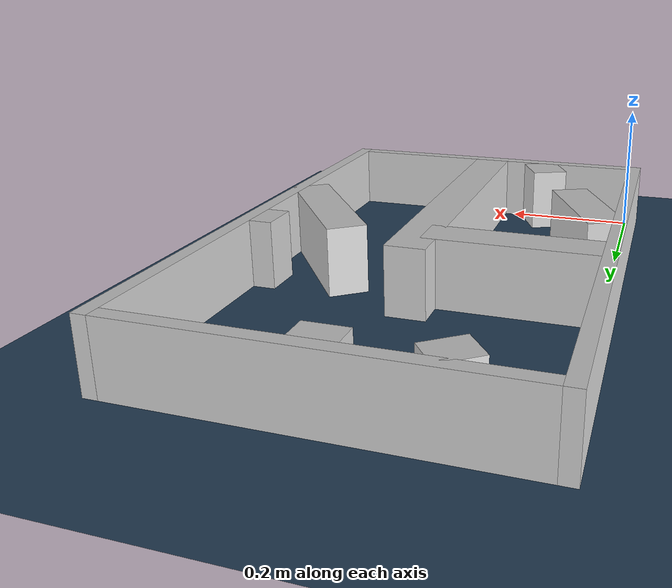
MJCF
<?xml version="1.0" ?>
<mujoco model="generated_real_template">
  <compiler angle="degree"/>
  <option timestep="0.002" integrator="implicitfast" iterations="100" cone="elliptic"/>
  <default>
    <geom density="1"/>
  </default>
  <asset>
    <texture builtin="gradient" height="3072" rgb1="0.3 0.5 0.7" rgb2="0 0 0" type="skybox" width="512"/>
    <texture builtin="checker" height="300" mark="edge" markrgb="0.8 0.8 0.8" name="groundplane" rgb1="0.2 0.3 0.4" rgb2="0.1 0.2 0.3" type="2d" width="300"/>
    <material name="groundplane" reflectance="0.2" texrepeat="5 5" texture="groundplane" texuniform="true"/>
  </asset>
  <worldbody>
    <light dir="0 0 -1" directional="true" pos="0 0 1.5"/>
    <geom name="floor" type="plane" condim="4" friction="0.5 0.005 0.001" material="groundplane" size="0 0 0.05"/>
    <body name="walls">
      <geom name="wall_boundary_left" type="box" condim="4" friction="1.0 0.005 0.0001" rgba="0.8 0.8 0.8 1" pos="-0.010000 0.387500 0.050000" euler="0 0 0.000000" size="0.010000 0.407500 0.050000"/>
      <geom name="wall_boundary_right" type="box" condim="4" friction="1.0 0.005 0.0001" rgba="0.8 0.8 0.8 1" pos="0.500000 0.387500 0.050000" euler="0 0 0.000000" size="0.010000 0.407500 0.050000"/>
      <geom name="wall_boundary_bottom" type="box" condim="4" friction="1.0 0.005 0.0001" rgba="0.8 0.8 0.8 1" pos="0.245000 -0.010000 0.050000" euler="0 0 0.000000" size="0.245000 0.010000 0.050000"/>
      <geom name="wall_boundary_top" type="box" condim="4" friction="1.0 0.005 0.0001" rgba="0.8 0.8 0.8 1" pos="0.245000 0.785000 0.050000" euler="0 0 0.000000" size="0.245000 0.010000 0.050000"/>
      <geom name="wall_inner_1_1" type="box" condim="4" friction="1.0 0.005 0.0001" rgba="0.8 0.8 0.8 1" pos="0.043391 0.241570 0.050000" euler="0 0 -65.049961" size="0.089016 0.028500 0.050000"/>
      <geom name="wall_inner_1_2" type="box" condim="4" friction="1.0 0.005 0.0001" rgba="0.8 0.8 0.8 1" pos="0.141899 0.029836 0.050000" euler="0 0 -65.049961" size="0.032906 0.028500 0.050000"/>
      <geom name="wall_inner_2_1" type="box" condim="4" friction="1.0 0.005 0.0001" rgba="0.8 0.8 0.8 1" pos="0.244414 0.250897 0.050000" euler="0 0 90.000000" size="0.250897 0.028500 0.050000"/>
      <geom name="wall_inner_2_2" type="box" condim="4" friction="1.0 0.005 0.0001" rgba="0.8 0.8 0.8 1" pos="0.244414 0.757815 0.050000" euler="0 0 90.000000" size="0.017185 0.028500 0.050000"/>
      <geom name="wall_inner_3_1" type="box" condim="4" friction="1.0 0.005 0.0001" rgba="0.8 0.8 0.8 1" pos="0.118543 0.431023 0.050000" euler="0 0 0.000000" size="0.118543 0.028500 0.050000"/>
      <geom name="wall_inner_3_2" type="box" condim="4" friction="1.0 0.005 0.0001" rgba="0.8 0.8 0.8 1" pos="0.473293 0.431023 0.050000" euler="0 0 0.000000" size="0.016707 0.028500 0.050000"/>
      <geom name="wall_inner_4_1" type="box" condim="4" friction="1.0 0.005 0.0001" rgba="0.8 0.8 0.8 1" pos="0.110000 0.756136 0.050000" euler="0 0 -52.635785" size="0.023735 0.028500 0.050000"/>
      <geom name="wall_inner_4_2" type="box" condim="4" friction="1.0 0.005 0.0001" rgba="0.8 0.8 0.8 1" pos="0.416900 0.354206 0.050000" euler="0 0 -52.635785" size="0.116081 0.028500 0.050000"/>
    </body>
  </worldbody>
</mujoco>
